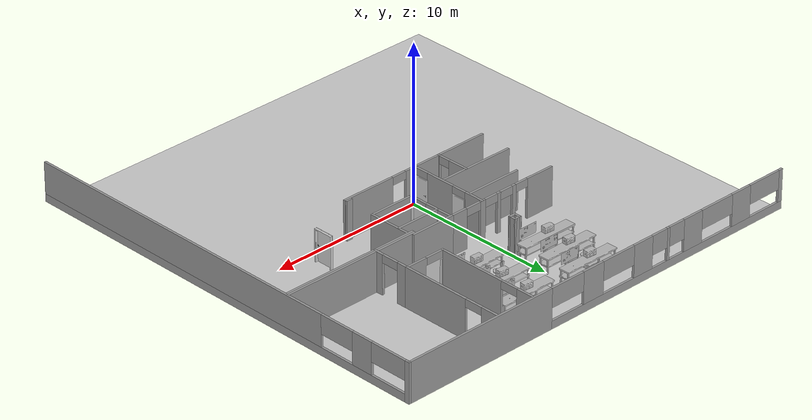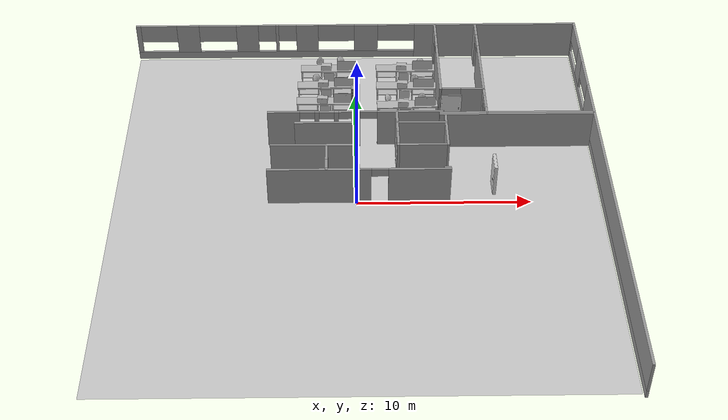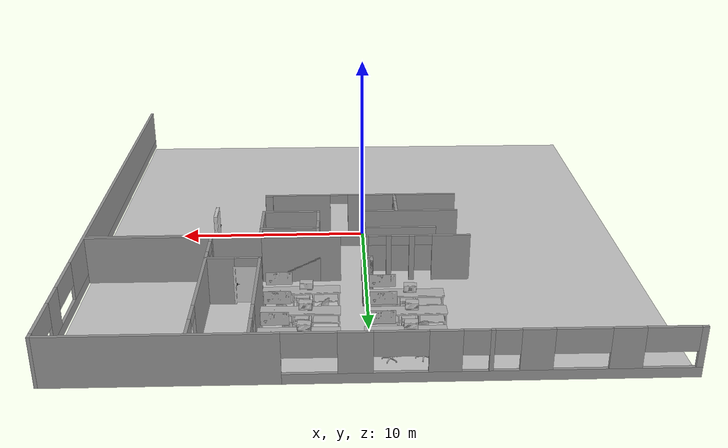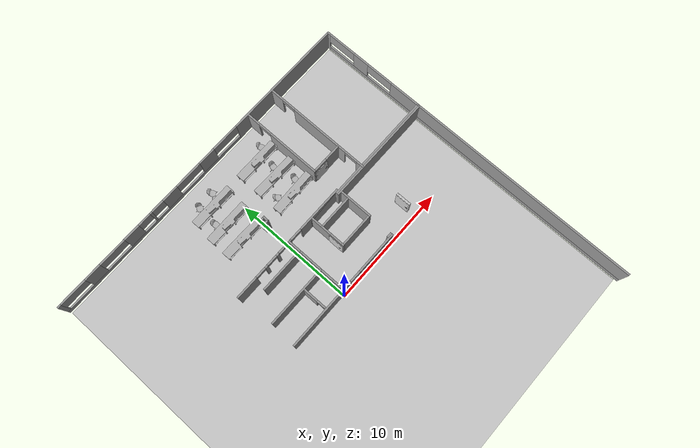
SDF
<sdf version="1.6">
 <world name="default">
  <model name="my_ground_plane">
   <static>1</static>
   <link name="link">
    <collision name="collision">
     <geometry><plane><normal>0 0 1</normal><size>100 100</size></plane></geometry>
     <surface><friction><ode><mu>100</mu><mu2>50</mu2></ode></friction></surface>
    </collision>
    <visual name="visual">
     <cast_shadows>0</cast_shadows>
     <geometry><plane><normal>0 0 1</normal><size>28 28</size></plane></geometry>
     <material>
      <script>
       <uri>model://my_ground_plane/materials/scripts</uri>
       <uri>model://my_ground_plane/materials/textures</uri>
       <name>MyGroundPlane/Image</name>
      </script>
     </material>
    </visual>
   </link>
  </model>
  <model name="basement">
   <link name="Wall_108">
    <pose>2.7255 0.139626 0 0 -0 0</pose>
    <visual name="Wall_108_Visual_0">
     <pose>-2.26972 0 1.25 0 -0 0</pose>
     <geometry><box><size>0.710554 0.15 2.5</size></box></geometry>
     <material>
      <script><uri>file://media/materials/scripts/gazebo.material</uri><name>Gazebo/Grey</name></script>
      <ambient>1 1 1 1</ambient>
     </material>
    </visual>
    <collision name="Wall_108_Collision_0">
     <geometry><box><size>0.710554 0.15 2.5</size></box></geometry>
     <pose>-2.26972 0 1.25 0 -0 0</pose>
    </collision>
    <visual name="Wall_108_Visual_1">
     <pose>0.840079 0 1.25 0 -0 0</pose>
     <geometry><box><size>3.56984 0.15 2.5</size></box></geometry>
     <material>
      <script><uri>file://media/materials/scripts/gazebo.material</uri><name>Gazebo/Grey</name></script>
      <ambient>1 1 1 1</ambient>
     </material>
    </visual>
    <collision name="Wall_108_Collision_1">
     <geometry><box><size>3.56984 0.15 2.5</size></box></geometry>
     <pose>0.840079 0 1.25 0 -0 0</pose>
    </collision>
    <visual name="Wall_108_Visual_2">
     <pose>-1.42964 0 2.25 0 -0 0</pose>
     <geometry><box><size>0.969605 0.15 0.5</size></box></geometry>
     <material>
      <script><uri>file://media/materials/scripts/gazebo.material</uri><name>Gazebo/Grey</name></script>
      <ambient>1 1 1 1</ambient>
     </material>
    </visual>
    <collision name="Wall_108_Collision_2">
     <geometry><box><size>0.969605 0.15 0.5</size></box></geometry>
     <pose>-1.42964 0 2.25 0 -0 0</pose>
    </collision>
   </link>
   <link name="Wall_116">
    <collision name="Wall_116_Collision">
     <geometry><box><size>0.4 0.15 2.5</size></box></geometry>
     <pose>0 0 1.25 0 -0 0</pose>
    </collision>
    <visual name="Wall_116_Visual">
     <pose>0 0 1.25 0 -0 0</pose>
     <geometry><box><size>0.4 0.15 2.5</size></box></geometry>
     <material>
      <script><uri>file://media/materials/scripts/gazebo.material</uri><name>Gazebo/Grey</name></script>
      <ambient>1 1 1 1</ambient>
     </material>
    </visual>
    <pose>5.13257 0.268093 0 0 -0 0</pose>
   </link>
   <link name="Wall_33">
    <pose>-0.0257 5.29795 0 0 -0 0</pose>
    <visual name="Wall_33_Visual_0">
     <pose>-4.2845 0 1.25 0 -0 0</pose>
     <geometry><box><size>1.93101 0.15 2.5</size></box></geometry>
     <material>
      <script><uri>file://media/materials/scripts/gazebo.material</uri><name>Gazebo/Grey</name></script>
      <ambient>1 1 1 1</ambient>
     </material>
    </visual>
    <collision name="Wall_33_Collision_0">
     <geometry><box><size>1.93101 0.15 2.5</size></box></geometry>
     <pose>-4.2845 0 1.25 0 -0 0</pose>
    </collision>
    <visual name="Wall_33_Visual_1">
     <pose>-2.30166 0 1.25 0 -0 0</pose>
     <geometry><box><size>0.26897 0.15 2.5</size></box></geometry>
     <material>
      <script><uri>file://media/materials/scripts/gazebo.material</uri><name>Gazebo/Grey</name></script>
      <ambient>1 1 1 1</ambient>
     </material>
    </visual>
    <collision name="Wall_33_Collision_1">
     <geometry><box><size>0.26897 0.15 2.5</size></box></geometry>
     <pose>-2.30166 0 1.25 0 -0 0</pose>
    </collision>
    <visual name="Wall_33_Visual_2">
     <pose>-1.1397 0 1.25 0 -0 0</pose>
     <geometry><box><size>0.254942 0.15 2.5</size></box></geometry>
     <material>
      <script><uri>file://media/materials/scripts/gazebo.material</uri><name>Gazebo/Grey</name></script>
      <ambient>1 1 1 1</ambient>
     </material>
    </visual>
    <collision name="Wall_33_Collision_2">
     <geometry><box><size>0.254942 0.15 2.5</size></box></geometry>
     <pose>-1.1397 0 1.25 0 -0 0</pose>
    </collision>
    <visual name="Wall_33_Visual_3">
     <pose>0.071064 0 1.25 0 -0 0</pose>
     <geometry><box><size>0.366595 0.15 2.5</size></box></geometry>
     <material>
      <script><uri>file://media/materials/scripts/gazebo.material</uri><name>Gazebo/Grey</name></script>
      <ambient>1 1 1 1</ambient>
     </material>
    </visual>
    <collision name="Wall_33_Collision_3">
     <geometry><box><size>0.366595 0.15 2.5</size></box></geometry>
     <pose>0.071064 0 1.25 0 -0 0</pose>
    </collision>
    <visual name="Wall_33_Visual_4">
     <pose>3.26793 0 1.25 0 -0 0</pose>
     <geometry><box><size>3.96414 0.15 2.5</size></box></geometry>
     <material>
      <script><uri>file://media/materials/scripts/gazebo.material</uri><name>Gazebo/Grey</name></script>
      <ambient>1 1 1 1</ambient>
     </material>
    </visual>
    <collision name="Wall_33_Collision_4">
     <geometry><box><size>3.96414 0.15 2.5</size></box></geometry>
     <pose>3.26793 0 1.25 0 -0 0</pose>
    </collision>
    <visual name="Wall_33_Visual_5">
     <pose>3.78189 0 1.25 0 -0 0</pose>
     <geometry><box><size>2.93622 0.15 2.5</size></box></geometry>
     <material>
      <script><uri>file://media/materials/scripts/gazebo.material</uri><name>Gazebo/Grey</name></script>
      <ambient>1 1 1 1</ambient>
     </material>
    </visual>
    <collision name="Wall_33_Collision_5">
     <geometry><box><size>2.93622 0.15 2.5</size></box></geometry>
     <pose>3.78189 0 1.25 0 -0 0</pose>
    </collision>
    <visual name="Wall_33_Visual_6">
     <pose>-2.87757 0 2.25 0 -0 0</pose>
     <geometry><box><size>0.882847 0.15 0.5</size></box></geometry>
     <material>
      <script><uri>file://media/materials/scripts/gazebo.material</uri><name>Gazebo/Grey</name></script>
      <ambient>1 1 1 1</ambient>
     </material>
    </visual>
    <collision name="Wall_33_Collision_6">
     <geometry><box><size>0.882847 0.15 0.5</size></box></geometry>
     <pose>-2.87757 0 2.25 0 -0 0</pose>
    </collision>
    <visual name="Wall_33_Visual_7">
     <pose>-1.71717 0 2.25 0 -0 0</pose>
     <geometry><box><size>0.9 0.15 0.5</size></box></geometry>
     <material>
      <script><uri>file://media/materials/scripts/gazebo.material</uri><name>Gazebo/Grey</name></script>
      <ambient>1 1 1 1</ambient>
     </material>
    </visual>
    <collision name="Wall_33_Collision_7">
     <geometry><box><size>0.9 0.15 0.5</size></box></geometry>
     <pose>-1.71717 0 2.25 0 -0 0</pose>
    </collision>
    <visual name="Wall_33_Visual_8">
     <pose>-0.562234 0 2.25 0 -0 0</pose>
     <geometry><box><size>0.9 0.15 0.5</size></box></geometry>
     <material>
      <script><uri>file://media/materials/scripts/gazebo.material</uri><name>Gazebo/Grey</name></script>
      <ambient>1 1 1 1</ambient>
     </material>
    </visual>
    <collision name="Wall_33_Collision_8">
     <geometry><box><size>0.9 0.15 0.5</size></box></geometry>
     <pose>-0.562234 0 2.25 0 -0 0</pose>
    </collision>
    <visual name="Wall_33_Visual_9">
     <pose>0.768692 0 2.25 0 -0 0</pose>
     <geometry><box><size>1.02866 0.15 0.5</size></box></geometry>
     <material>
      <script><uri>file://media/materials/scripts/gazebo.material</uri><name>Gazebo/Grey</name></script>
      <ambient>1 1 1 1</ambient>
     </material>
    </visual>
    <collision name="Wall_33_Collision_9">
     <geometry><box><size>1.02866 0.15 0.5</size></box></geometry>
     <pose>0.768692 0 2.25 0 -0 0</pose>
    </collision>
   </link>
   <link name="Wall_35">
    <pose>5.14294 10.7592 0 0 -0 1.5708</pose>
    <visual name="Wall_35_Visual_0">
     <pose>-1.14443 0 1.25 0 -0 0</pose>
     <geometry><box><size>4.46114 0.15 2.5</size></box></geometry>
     <material>
      <script><uri>file://media/materials/scripts/gazebo.material</uri><name>Gazebo/Grey</name></script>
      <ambient>1 1 1 1</ambient>
     </material>
    </visual>
    <collision name="Wall_35_Collision_0">
     <geometry><box><size>4.46114 0.15 2.5</size></box></geometry>
     <pose>-1.14443 0 1.25 0 -0 0</pose>
    </collision>
    <visual name="Wall_35_Visual_1">
     <pose>2.80026 0 1.25 0 -0 0</pose>
     <geometry><box><size>1.14948 0.15 2.5</size></box></geometry>
     <material>
      <script><uri>file://media/materials/scripts/gazebo.material</uri><name>Gazebo/Grey</name></script>
      <ambient>1 1 1 1</ambient>
     </material>
    </visual>
    <collision name="Wall_35_Collision_1">
     <geometry><box><size>1.14948 0.15 2.5</size></box></geometry>
     <pose>2.80026 0 1.25 0 -0 0</pose>
    </collision>
    <visual name="Wall_35_Visual_2">
     <pose>1.65583 0 2.25 0 -0 0</pose>
     <geometry><box><size>1.13938 0.15 0.5</size></box></geometry>
     <material>
      <script><uri>file://media/materials/scripts/gazebo.material</uri><name>Gazebo/Grey</name></script>
      <ambient>1 1 1 1</ambient>
     </material>
    </visual>
    <collision name="Wall_35_Collision_2">
     <geometry><box><size>1.13938 0.15 0.5</size></box></geometry>
     <pose>1.65583 0 2.25 0 -0 0</pose>
    </collision>
   </link>
   <link name="Wall_37">
    <pose>6.43878 7.45698 0 0 0 -0.001748</pose>
    <visual name="Wall_37_Visual_0">
     <pose>-1.29409 0 1.25 0 -0 0</pose>
     <geometry><box><size>0.153496 0.15 2.5</size></box></geometry>
     <material>
      <script><uri>file://media/materials/scripts/gazebo.material</uri><name>Gazebo/Grey</name></script>
      <ambient>1 1 1 1</ambient>
     </material>
    </visual>
    <collision name="Wall_37_Collision_0">
     <geometry><box><size>0.153496 0.15 2.5</size></box></geometry>
     <pose>-1.29409 0 1.25 0 -0 0</pose>
    </collision>
    <visual name="Wall_37_Visual_1">
     <pose>0.650436 0 1.25 0 -0 0</pose>
     <geometry><box><size>1.4408 0.15 2.5</size></box></geometry>
     <material>
      <script><uri>file://media/materials/scripts/gazebo.material</uri><name>Gazebo/Grey</name></script>
      <ambient>1 1 1 1</ambient>
     </material>
    </visual>
    <collision name="Wall_37_Collision_1">
     <geometry><box><size>1.4408 0.15 2.5</size></box></geometry>
     <pose>0.650436 0 1.25 0 -0 0</pose>
    </collision>
    <visual name="Wall_37_Visual_2">
     <pose>-0.643652 0 2.25 0 -0 0</pose>
     <geometry><box><size>1.14738 0.15 0.5</size></box></geometry>
     <material>
      <script><uri>file://media/materials/scripts/gazebo.material</uri><name>Gazebo/Grey</name></script>
      <ambient>1 1 1 1</ambient>
     </material>
    </visual>
    <collision name="Wall_37_Collision_2">
     <geometry><box><size>1.14738 0.15 0.5</size></box></geometry>
     <pose>-0.643652 0 2.25 0 -0 0</pose>
    </collision>
   </link>
   <link name="Wall_38">
    <pose>7.74331 10.7547 0 0 -0 1.5708</pose>
    <visual name="Wall_38_Visual_0">
     <pose>-1.1444 0 1.25 0 -0 0</pose>
     <geometry><box><size>4.4612 0.15 2.5</size></box></geometry>
     <material>
      <script><uri>file://media/materials/scripts/gazebo.material</uri><name>Gazebo/Grey</name></script>
      <ambient>1 1 1 1</ambient>
     </material>
    </visual>
    <collision name="Wall_38_Collision_0">
     <geometry><box><size>4.4612 0.15 2.5</size></box></geometry>
     <pose>-1.1444 0 1.25 0 -0 0</pose>
    </collision>
    <visual name="Wall_38_Visual_1">
     <pose>2.80523 0 1.25 0 -0 0</pose>
     <geometry><box><size>1.13954 0.15 2.5</size></box></geometry>
     <material>
      <script><uri>file://media/materials/scripts/gazebo.material</uri><name>Gazebo/Grey</name></script>
      <ambient>1 1 1 1</ambient>
     </material>
    </visual>
    <collision name="Wall_38_Collision_1">
     <geometry><box><size>1.13954 0.15 2.5</size></box></geometry>
     <pose>2.80523 0 1.25 0 -0 0</pose>
    </collision>
    <visual name="Wall_38_Visual_2">
     <pose>1.66083 0 2.25 0 -0 0</pose>
     <geometry><box><size>1.14927 0.15 0.5</size></box></geometry>
     <material>
      <script><uri>file://media/materials/scripts/gazebo.material</uri><name>Gazebo/Grey</name></script>
      <ambient>1 1 1 1</ambient>
     </material>
    </visual>
    <collision name="Wall_38_Collision_2">
     <geometry><box><size>1.14927 0.15 0.5</size></box></geometry>
     <pose>1.66083 0 2.25 0 -0 0</pose>
    </collision>
   </link>
   <link name="Wall_40">
    <pose>7.74284 6.23253 0 0 -0 1.5708</pose>
    <visual name="Wall_40_Visual_0">
     <pose>-0.91423 0 1.25 0 -0 0</pose>
     <geometry><box><size>0.671541 0.15 2.5</size></box></geometry>
     <material>
      <script><uri>file://media/materials/scripts/gazebo.material</uri><name>Gazebo/Grey</name></script>
      <ambient>1 1 1 1</ambient>
     </material>
    </visual>
    <collision name="Wall_40_Collision_0">
     <geometry><box><size>0.671541 0.15 2.5</size></box></geometry>
     <pose>-0.91423 0 1.25 0 -0 0</pose>
    </collision>
    <visual name="Wall_40_Visual_1">
     <pose>0.897548 0 1.25 0 -0 0</pose>
     <geometry><box><size>0.704904 0.15 2.5</size></box></geometry>
     <material>
      <script><uri>file://media/materials/scripts/gazebo.material</uri><name>Gazebo/Grey</name></script>
      <ambient>1 1 1 1</ambient>
     </material>
    </visual>
    <collision name="Wall_40_Collision_1">
     <geometry><box><size>0.704904 0.15 2.5</size></box></geometry>
     <pose>0.897548 0 1.25 0 -0 0</pose>
    </collision>
    <visual name="Wall_40_Visual_2">
     <pose>1.19765 0 1.25 0 -0 0</pose>
     <geometry><box><size>0.104698 0.15 2.5</size></box></geometry>
     <material>
      <script><uri>file://media/materials/scripts/gazebo.material</uri><name>Gazebo/Grey</name></script>
      <ambient>1 1 1 1</ambient>
     </material>
    </visual>
    <collision name="Wall_40_Collision_2">
     <geometry><box><size>0.104698 0.15 2.5</size></box></geometry>
     <pose>1.19765 0 1.25 0 -0 0</pose>
    </collision>
    <visual name="Wall_40_Visual_3">
     <pose>-0.022457 0 2.25 0 -0 0</pose>
     <geometry><box><size>1.11201 0.15 0.5</size></box></geometry>
     <material>
      <script><uri>file://media/materials/scripts/gazebo.material</uri><name>Gazebo/Grey</name></script>
      <ambient>1 1 1 1</ambient>
     </material>
    </visual>
    <collision name="Wall_40_Collision_3">
     <geometry><box><size>1.11201 0.15 0.5</size></box></geometry>
     <pose>-0.022457 0 2.25 0 -0 0</pose>
    </collision>
   </link>
   <link name="Wall_42">
    <collision name="Wall_42_Collision">
     <geometry><box><size>0.5 0.15 2.5</size></box></geometry>
     <pose>0 0 1.25 0 -0 0</pose>
    </collision>
    <visual name="Wall_42_Visual">
     <pose>0 0 1.25 0 -0 0</pose>
     <geometry><box><size>0.5 0.15 2.5</size></box></geometry>
     <material>
      <script><uri>file://media/materials/scripts/gazebo.material</uri><name>Gazebo/Grey</name></script>
      <ambient>1 1 1 1</ambient>
     </material>
    </visual>
    <pose>-0.191022 7.69282 0 0 0 -1.5708</pose>
   </link>
   <link name="Wall_43">
    <collision name="Wall_43_Collision">
     <geometry><box><size>0.5 0.15 2.5</size></box></geometry>
     <pose>0 0 1.25 0 -0 0</pose>
    </collision>
    <visual name="Wall_43_Visual">
     <pose>0 0 1.25 0 -0 0</pose>
     <geometry><box><size>0.5 0.15 2.5</size></box></geometry>
     <material>
      <script><uri>file://media/materials/scripts/gazebo.material</uri><name>Gazebo/Grey</name></script>
      <ambient>1 1 1 1</ambient>
     </material>
    </visual>
    <pose>-0.016022 7.51782 0 0 -0 0</pose>
   </link>
   <link name="Wall_44">
    <collision name="Wall_44_Collision">
     <geometry><box><size>0.5 0.15 2.5</size></box></geometry>
     <pose>0 0 1.25 0 -0 0</pose>
    </collision>
    <visual name="Wall_44_Visual">
     <pose>0 0 1.25 0 -0 0</pose>
     <geometry><box><size>0.5 0.15 2.5</size></box></geometry>
     <material>
      <script><uri>file://media/materials/scripts/gazebo.material</uri><name>Gazebo/Grey</name></script>
      <ambient>1 1 1 1</ambient>
     </material>
    </visual>
    <pose>0.158978 7.69282 0 0 -0 1.5708</pose>
   </link>
   <link name="Wall_45">
    <collision name="Wall_45_Collision">
     <geometry><box><size>0.5 0.15 2.5</size></box></geometry>
     <pose>0 0 1.25 0 -0 0</pose>
    </collision>
    <visual name="Wall_45_Visual">
     <pose>0 0 1.25 0 -0 0</pose>
     <geometry><box><size>0.5 0.15 2.5</size></box></geometry>
     <material>
      <script><uri>file://media/materials/scripts/gazebo.material</uri><name>Gazebo/Grey</name></script>
      <ambient>1 1 1 1</ambient>
     </material>
    </visual>
    <pose>-0.016022 7.86782 0 0 -0 3.14159</pose>
   </link>
   <link name="Wall_49">
    <collision name="Wall_49_Collision">
     <geometry><box><size>5.10941 0.15 2.5</size></box></geometry>
     <pose>0 0 1.25 0 -0 0</pose>
    </collision>
    <visual name="Wall_49_Visual">
     <pose>0 0 1.25 0 -0 0</pose>
     <geometry><box><size>5.10941 0.15 2.5</size></box></geometry>
     <material>
      <script><uri>file://media/materials/scripts/gazebo.material</uri><name>Gazebo/Grey</name></script>
      <ambient>1 1 1 1</ambient>
     </material>
    </visual>
    <pose>-2.43353 2.27623 0 0 -0 3.13785</pose>
   </link>
   <link name="Wall_5">
    <pose>14.1254 0.001224 0 0 0 -1.5708</pose>
    <visual name="Wall_5_Visual_0">
     <pose>-14.0869 0 1.25 0 -0 0</pose>
     <geometry><box><size>0.326197 0.15 2.5</size></box></geometry>
     <material>
      <script><uri>file://media/materials/scripts/gazebo.material</uri><name>Gazebo/Grey</name></script>
      <ambient>1 1 1 1</ambient>
     </material>
    </visual>
    <collision name="Wall_5_Collision_0">
     <geometry><box><size>0.326197 0.15 2.5</size></box></geometry>
     <pose>-14.0869 0 1.25 0 -0 0</pose>
    </collision>
    <visual name="Wall_5_Visual_1">
     <pose>0.163098 0 0.25 0 -0 0</pose>
     <geometry><box><size>28.1738 0.15 0.5</size></box></geometry>
     <material>
      <script><uri>file://media/materials/scripts/gazebo.material</uri><name>Gazebo/Grey</name></script>
      <ambient>1 1 1 1</ambient>
     </material>
    </visual>
    <collision name="Wall_5_Collision_1">
     <geometry><box><size>28.1738 0.15 0.5</size></box></geometry>
     <pose>0.163098 0 0.25 0 -0 0</pose>
    </collision>
    <visual name="Wall_5_Visual_2">
     <pose>-10.7815 0 1.5 0 -0 0</pose>
     <geometry><box><size>1.40279 0.15 2</size></box></geometry>
     <material>
      <script><uri>file://media/materials/scripts/gazebo.material</uri><name>Gazebo/Grey</name></script>
      <ambient>1 1 1 1</ambient>
     </material>
    </visual>
    <collision name="Wall_5_Collision_2">
     <geometry><box><size>1.40279 0.15 2</size></box></geometry>
     <pose>-10.7815 0 1.5 0 -0 0</pose>
    </collision>
    <visual name="Wall_5_Visual_3">
     <pose>3.25452 0 1.5 0 -0 0</pose>
     <geometry><box><size>21.991 0.15 2</size></box></geometry>
     <material>
      <script><uri>file://media/materials/scripts/gazebo.material</uri><name>Gazebo/Grey</name></script>
      <ambient>1 1 1 1</ambient>
     </material>
    </visual>
    <collision name="Wall_5_Collision_3">
     <geometry><box><size>21.991 0.15 2</size></box></geometry>
     <pose>3.25452 0 1.5 0 -0 0</pose>
    </collision>
    <visual name="Wall_5_Visual_4">
     <pose>-12.7033 0 1.9 0 -0 0</pose>
     <geometry><box><size>2.44093 0.15 1.2</size></box></geometry>
     <material>
      <script><uri>file://media/materials/scripts/gazebo.material</uri><name>Gazebo/Grey</name></script>
      <ambient>1 1 1 1</ambient>
     </material>
    </visual>
    <collision name="Wall_5_Collision_4">
     <geometry><box><size>2.44093 0.15 1.2</size></box></geometry>
     <pose>-12.7033 0 1.9 0 -0 0</pose>
    </collision>
    <visual name="Wall_5_Visual_5">
     <pose>-8.91052 0 1.9 0 -0 0</pose>
     <geometry><box><size>2.33913 0.15 1.2</size></box></geometry>
     <material>
      <script><uri>file://media/materials/scripts/gazebo.material</uri><name>Gazebo/Grey</name></script>
      <ambient>1 1 1 1</ambient>
     </material>
    </visual>
    <collision name="Wall_5_Collision_5">
     <geometry><box><size>2.33913 0.15 1.2</size></box></geometry>
     <pose>-8.91052 0 1.9 0 -0 0</pose>
    </collision>
   </link>
   <link name="Wall_51">
    <pose>0.057254 2.74787 0 0 0 -1.5708</pose>
    <visual name="Wall_51_Visual_0">
     <pose>-1.95726 0 1.25 0 -0 0</pose>
     <geometry><box><size>1.33549 0.15 2.5</size></box></geometry>
     <material>
      <script><uri>file://media/materials/scripts/gazebo.material</uri><name>Gazebo/Grey</name></script>
      <ambient>1 1 1 1</ambient>
     </material>
    </visual>
    <collision name="Wall_51_Collision_0">
     <geometry><box><size>1.33549 0.15 2.5</size></box></geometry>
     <pose>-1.95726 0 1.25 0 -0 0</pose>
    </collision>
    <visual name="Wall_51_Visual_1">
     <pose>0.62213 0 1.25 0 -0 0</pose>
     <geometry><box><size>1.94767 0.15 2.5</size></box></geometry>
     <material>
      <script><uri>file://media/materials/scripts/gazebo.material</uri><name>Gazebo/Grey</name></script>
      <ambient>1 1 1 1</ambient>
     </material>
    </visual>
    <collision name="Wall_51_Collision_1">
     <geometry><box><size>1.94767 0.15 2.5</size></box></geometry>
     <pose>0.62213 0 1.25 0 -0 0</pose>
    </collision>
    <visual name="Wall_51_Visual_2">
     <pose>2.56048 0 1.25 0 -0 0</pose>
     <geometry><box><size>0.129033 0.15 2.5</size></box></geometry>
     <material>
      <script><uri>file://media/materials/scripts/gazebo.material</uri><name>Gazebo/Grey</name></script>
      <ambient>1 1 1 1</ambient>
     </material>
    </visual>
    <collision name="Wall_51_Collision_2">
     <geometry><box><size>0.129033 0.15 2.5</size></box></geometry>
     <pose>2.56048 0 1.25 0 -0 0</pose>
    </collision>
    <visual name="Wall_51_Visual_3">
     <pose>-0.82061 0 2.25 0 -0 0</pose>
     <geometry><box><size>0.937807 0.15 0.5</size></box></geometry>
     <material>
      <script><uri>file://media/materials/scripts/gazebo.material</uri><name>Gazebo/Grey</name></script>
      <ambient>1 1 1 1</ambient>
     </material>
    </visual>
    <collision name="Wall_51_Collision_3">
     <geometry><box><size>0.937807 0.15 0.5</size></box></geometry>
     <pose>-0.82061 0 2.25 0 -0 0</pose>
    </collision>
    <visual name="Wall_51_Visual_4">
     <pose>2.04597 0 2.25 0 -0 0</pose>
     <geometry><box><size>0.9 0.15 0.5</size></box></geometry>
     <material>
      <script><uri>file://media/materials/scripts/gazebo.material</uri><name>Gazebo/Grey</name></script>
      <ambient>1 1 1 1</ambient>
     </material>
    </visual>
    <collision name="Wall_51_Collision_4">
     <geometry><box><size>0.9 0.15 0.5</size></box></geometry>
     <pose>2.04597 0 2.25 0 -0 0</pose>
    </collision>
   </link>
   <link name="Wall_53">
    <collision name="Wall_53_Collision">
     <geometry><box><size>3.75 0.15 2.5</size></box></geometry>
     <pose>0 0 1.25 0 -0 0</pose>
    </collision>
    <visual name="Wall_53_Visual">
     <pose>0 0 1.25 0 -0 0</pose>
     <geometry><box><size>3.75 0.15 2.5</size></box></geometry>
     <material>
      <script><uri>file://media/materials/scripts/gazebo.material</uri><name>Gazebo/Grey</name></script>
      <ambient>1 1 1 1</ambient>
     </material>
    </visual>
    <pose>-1.76423 4.29808 0 0 -0 0</pose>
   </link>
   <link name="Wall_63">
    <collision name="Wall_63_Collision">
     <geometry><box><size>5.25 0.15 2.5</size></box></geometry>
     <pose>0 0 1.25 0 -0 0</pose>
    </collision>
    <visual name="Wall_63_Visual">
     <pose>0 0 1.25 0 -0 0</pose>
     <geometry><box><size>5.25 0.15 2.5</size></box></geometry>
     <material>
      <script><uri>file://media/materials/scripts/gazebo.material</uri><name>Gazebo/Grey</name></script>
      <ambient>1 1 1 1</ambient>
     </material>
    </visual>
    <pose>-2.49367 0.144889 0 0 -0 0</pose>
   </link>
   <link name="Wall_65">
    <pose>-1.74088 1.21415 0 0 -0 1.5708</pose>
    <visual name="Wall_65_Visual_0">
     <pose>-1.03933 0 1.25 0 -0 0</pose>
     <geometry><box><size>0.171333 0.15 2.5</size></box></geometry>
     <material>
      <script><uri>file://media/materials/scripts/gazebo.material</uri><name>Gazebo/Grey</name></script>
      <ambient>1 1 1 1</ambient>
     </material>
    </visual>
    <collision name="Wall_65_Collision_0">
     <geometry><box><size>0.171333 0.15 2.5</size></box></geometry>
     <pose>-1.03933 0 1.25 0 -0 0</pose>
    </collision>
    <visual name="Wall_65_Visual_1">
     <pose>0.461338 0 1.25 0 -0 0</pose>
     <geometry><box><size>1.32732 0.15 2.5</size></box></geometry>
     <material>
      <script><uri>file://media/materials/scripts/gazebo.material</uri><name>Gazebo/Grey</name></script>
      <ambient>1 1 1 1</ambient>
     </material>
    </visual>
    <collision name="Wall_65_Collision_1">
     <geometry><box><size>1.32732 0.15 2.5</size></box></geometry>
     <pose>0.461338 0 1.25 0 -0 0</pose>
    </collision>
    <visual name="Wall_65_Visual_2">
     <pose>-0.577995 0 2.25 0 -0 0</pose>
     <geometry><box><size>0.751344 0.15 0.5</size></box></geometry>
     <material>
      <script><uri>file://media/materials/scripts/gazebo.material</uri><name>Gazebo/Grey</name></script>
      <ambient>1 1 1 1</ambient>
     </material>
    </visual>
    <collision name="Wall_65_Collision_2">
     <geometry><box><size>0.751344 0.15 0.5</size></box></geometry>
     <pose>-0.577995 0 2.25 0 -0 0</pose>
    </collision>
   </link>
   <link name="Wall_7">
    <pose>0.075421 14.1762 0 0 -0 3.14159</pose>
    <visual name="Wall_7_Visual_0">
     <pose>-8.94916 0 1.25 0 -0 0</pose>
     <geometry><box><size>10.3517 0.15 2.5</size></box></geometry>
     <material>
      <script><uri>file://media/materials/scripts/gazebo.material</uri><name>Gazebo/Grey</name></script>
      <ambient>1 1 1 1</ambient>
     </material>
    </visual>
    <collision name="Wall_7_Collision_0">
     <geometry><box><size>10.3517 0.15 2.5</size></box></geometry>
     <pose>-8.94916 0 1.25 0 -0 0</pose>
    </collision>
    <visual name="Wall_7_Visual_1">
     <pose>5.17584 0 0.25 0 -0 0</pose>
     <geometry><box><size>17.8983 0.15 0.5</size></box></geometry>
     <material>
      <script><uri>file://media/materials/scripts/gazebo.material</uri><name>Gazebo/Grey</name></script>
      <ambient>1 1 1 1</ambient>
     </material>
    </visual>
    <collision name="Wall_7_Collision_1">
     <geometry><box><size>17.8983 0.15 0.5</size></box></geometry>
     <pose>5.17584 0 0.25 0 -0 0</pose>
    </collision>
    <visual name="Wall_7_Visual_2">
     <pose>-0.655938 0 1.5 0 -0 0</pose>
     <geometry><box><size>1.50435 0.15 2</size></box></geometry>
     <material>
      <script><uri>file://media/materials/scripts/gazebo.material</uri><name>Gazebo/Grey</name></script>
      <ambient>1 1 1 1</ambient>
     </material>
    </visual>
    <collision name="Wall_7_Collision_2">
     <geometry><box><size>1.50435 0.15 2</size></box></geometry>
     <pose>-0.655938 0 1.5 0 -0 0</pose>
    </collision>
    <visual name="Wall_7_Visual_3">
     <pose>3.13367 0 1.5 0 -0 0</pose>
     <geometry><box><size>1.414 0.15 2</size></box></geometry>
     <material>
      <script><uri>file://media/materials/scripts/gazebo.material</uri><name>Gazebo/Grey</name></script>
      <ambient>1 1 1 1</ambient>
     </material>
    </visual>
    <collision name="Wall_7_Collision_3">
     <geometry><box><size>1.414 0.15 2</size></box></geometry>
     <pose>3.13367 0 1.5 0 -0 0</pose>
    </collision>
    <visual name="Wall_7_Visual_4">
     <pose>5.07313 0 1.5 0 -0 0</pose>
     <geometry><box><size>0.188237 0.15 2</size></box></geometry>
     <material>
      <script><uri>file://media/materials/scripts/gazebo.material</uri><name>Gazebo/Grey</name></script>
      <ambient>1 1 1 1</ambient>
     </material>
    </visual>
    <collision name="Wall_7_Collision_4">
     <geometry><box><size>0.188237 0.15 2</size></box></geometry>
     <pose>5.07313 0 1.5 0 -0 0</pose>
    </collision>
    <visual name="Wall_7_Visual_5">
     <pose>6.99754 0 1.5 0 -0 0</pose>
     <geometry><box><size>1.41729 0.15 2</size></box></geometry>
     <material>
      <script><uri>file://media/materials/scripts/gazebo.material</uri><name>Gazebo/Grey</name></script>
      <ambient>1 1 1 1</ambient>
     </material>
    </visual>
    <collision name="Wall_7_Collision_5">
     <geometry><box><size>1.41729 0.15 2</size></box></geometry>
     <pose>6.99754 0 1.5 0 -0 0</pose>
    </collision>
    <visual name="Wall_7_Visual_6">
     <pose>10.8099 0 1.5 0 -0 0</pose>
     <geometry><box><size>1.43338 0.15 2</size></box></geometry>
     <material>
      <script><uri>file://media/materials/scripts/gazebo.material</uri><name>Gazebo/Grey</name></script>
      <ambient>1 1 1 1</ambient>
     </material>
    </visual>
    <collision name="Wall_7_Collision_6">
     <geometry><box><size>1.43338 0.15 2</size></box></geometry>
     <pose>10.8099 0 1.5 0 -0 0</pose>
    </collision>
    <visual name="Wall_7_Visual_7">
     <pose>13.9751 0 1.5 0 -0 0</pose>
     <geometry><box><size>0.299735 0.15 2</size></box></geometry>
     <material>
      <script><uri>file://media/materials/scripts/gazebo.material</uri><name>Gazebo/Grey</name></script>
      <ambient>1 1 1 1</ambient>
     </material>
    </visual>
    <collision name="Wall_7_Collision_7">
     <geometry><box><size>0.299735 0.15 2</size></box></geometry>
     <pose>13.9751 0 1.5 0 -0 0</pose>
    </collision>
    <visual name="Wall_7_Visual_8">
     <pose>-2.59072 0 1.9 0 -0 0</pose>
     <geometry><box><size>2.36522 0.15 1.2</size></box></geometry>
     <material>
      <script><uri>file://media/materials/scripts/gazebo.material</uri><name>Gazebo/Grey</name></script>
      <ambient>1 1 1 1</ambient>
     </material>
    </visual>
    <collision name="Wall_7_Collision_8">
     <geometry><box><size>2.36522 0.15 1.2</size></box></geometry>
     <pose>-2.59072 0 1.9 0 -0 0</pose>
    </collision>
    <visual name="Wall_7_Visual_9">
     <pose>1.26145 0 1.9 0 -0 0</pose>
     <geometry><box><size>2.33044 0.15 1.2</size></box></geometry>
     <material>
      <script><uri>file://media/materials/scripts/gazebo.material</uri><name>Gazebo/Grey</name></script>
      <ambient>1 1 1 1</ambient>
     </material>
    </visual>
    <collision name="Wall_7_Collision_9">
     <geometry><box><size>2.33044 0.15 1.2</size></box></geometry>
     <pose>1.26145 0 1.9 0 -0 0</pose>
    </collision>
    <visual name="Wall_7_Visual_10">
     <pose>4.40984 0 1.9 0 -0 0</pose>
     <geometry><box><size>1.13834 0.15 1.2</size></box></geometry>
     <material>
      <script><uri>file://media/materials/scripts/gazebo.material</uri><name>Gazebo/Grey</name></script>
      <ambient>1 1 1 1</ambient>
     </material>
    </visual>
    <collision name="Wall_7_Collision_10">
     <geometry><box><size>1.13834 0.15 1.2</size></box></geometry>
     <pose>4.40984 0 1.9 0 -0 0</pose>
    </collision>
    <visual name="Wall_7_Visual_11">
     <pose>5.72807 0 1.9 0 -0 0</pose>
     <geometry><box><size>1.12165 0.15 1.2</size></box></geometry>
     <material>
      <script><uri>file://media/materials/scripts/gazebo.material</uri><name>Gazebo/Grey</name></script>
      <ambient>1 1 1 1</ambient>
     </material>
    </visual>
    <collision name="Wall_7_Collision_11">
     <geometry><box><size>1.12165 0.15 1.2</size></box></geometry>
     <pose>5.72807 0 1.9 0 -0 0</pose>
    </collision>
    <visual name="Wall_7_Visual_12">
     <pose>8.89969 0 1.9 0 -0 0</pose>
     <geometry><box><size>2.387 0.15 1.2</size></box></geometry>
     <material>
      <script><uri>file://media/materials/scripts/gazebo.material</uri><name>Gazebo/Grey</name></script>
      <ambient>1 1 1 1</ambient>
     </material>
    </visual>
    <collision name="Wall_7_Collision_12">
     <geometry><box><size>2.387 0.15 1.2</size></box></geometry>
     <pose>8.89969 0 1.9 0 -0 0</pose>
    </collision>
    <visual name="Wall_7_Visual_13">
     <pose>12.6759 0 1.9 0 -0 0</pose>
     <geometry><box><size>2.29869 0.15 1.2</size></box></geometry>
     <material>
      <script><uri>file://media/materials/scripts/gazebo.material</uri><name>Gazebo/Grey</name></script>
      <ambient>1 1 1 1</ambient>
     </material>
    </visual>
    <collision name="Wall_7_Collision_13">
     <geometry><box><size>2.29869 0.15 1.2</size></box></geometry>
     <pose>12.6759 0 1.9 0 -0 0</pose>
    </collision>
   </link>
   <link name="Wall_72">
    <collision name="Wall_72_Collision">
     <geometry><box><size>9.25 0.15 2.5</size></box></geometry>
     <pose>0 0 1.25 0 -0 0</pose>
    </collision>
    <visual name="Wall_72_Visual">
     <pose>0 0 1.25 0 -0 0</pose>
     <geometry><box><size>9.25 0.15 2.5</size></box></geometry>
     <material>
      <script><uri>file://media/materials/scripts/gazebo.material</uri><name>Gazebo/Grey</name></script>
      <ambient>1 1 1 1</ambient>
     </material>
    </visual>
    <pose>9.56173 5.1543 0 0 -0 0</pose>
   </link>
   <link name="Wall_87">
    <collision name="Wall_87_Collision">
     <geometry><box><size>2.75 0.15 2.5</size></box></geometry>
     <pose>0 0 1.25 0 -0 0</pose>
    </collision>
    <visual name="Wall_87_Visual">
     <pose>0 0 1.25 0 -0 0</pose>
     <geometry><box><size>2.75 0.15 2.5</size></box></geometry>
     <material>
      <script><uri>file://media/materials/scripts/gazebo.material</uri><name>Gazebo/Grey</name></script>
      <ambient>1 1 1 1</ambient>
     </material>
    </visual>
    <pose>3.85972 2.27204 0 0 -0 3.14159</pose>
   </link>
   <link name="Wall_89">
    <collision name="Wall_89_Collision">
     <geometry><box><size>2.75 0.15 2.5</size></box></geometry>
     <pose>0 0 1.25 0 -0 0</pose>
    </collision>
    <visual name="Wall_89_Visual">
     <pose>0 0 1.25 0 -0 0</pose>
     <geometry><box><size>2.75 0.15 2.5</size></box></geometry>
     <material>
      <script><uri>file://media/materials/scripts/gazebo.material</uri><name>Gazebo/Grey</name></script>
      <ambient>1 1 1 1</ambient>
     </material>
    </visual>
    <pose>5.29065 3.57332 0 0 0 -1.5708</pose>
   </link>
   <link name="Wall_92">
    <collision name="Wall_92_Collision">
     <geometry><box><size>9.25 0.15 2.5</size></box></geometry>
     <pose>0 0 1.25 0 -0 0</pose>
    </collision>
    <visual name="Wall_92_Visual">
     <pose>0 0 1.25 0 -0 0</pose>
     <geometry><box><size>9.25 0.15 2.5</size></box></geometry>
     <material>
      <script><uri>file://media/materials/scripts/gazebo.material</uri><name>Gazebo/Grey</name></script>
      <ambient>1 1 1 1</ambient>
     </material>
    </visual>
    <pose>9.55987 5.01359 0 0 -0 0</pose>
   </link>
   <link name="Wall_94">
    <pose>2.41363 3.74686 0 0 -0 1.5708</pose>
    <visual name="Wall_94_Visual_0">
     <pose>-1.44282 0 1.25 0 -0 0</pose>
     <geometry><box><size>0.214361 0.15 2.5</size></box></geometry>
     <material>
      <script><uri>file://media/materials/scripts/gazebo.material</uri><name>Gazebo/Grey</name></script>
      <ambient>1 1 1 1</ambient>
     </material>
    </visual>
    <collision name="Wall_94_Collision_0">
     <geometry><box><size>0.214361 0.15 2.5</size></box></geometry>
     <pose>-1.44282 0 1.25 0 -0 0</pose>
    </collision>
    <visual name="Wall_94_Visual_1">
     <pose>0.624467 0 1.25 0 -0 0</pose>
     <geometry><box><size>1.85107 0.15 2.5</size></box></geometry>
     <material>
      <script><uri>file://media/materials/scripts/gazebo.material</uri><name>Gazebo/Grey</name></script>
      <ambient>1 1 1 1</ambient>
     </material>
    </visual>
    <collision name="Wall_94_Collision_1">
     <geometry><box><size>1.85107 0.15 2.5</size></box></geometry>
     <pose>0.624467 0 1.25 0 -0 0</pose>
    </collision>
    <visual name="Wall_94_Visual_2">
     <pose>-0.818353 0 2.25 0 -0 0</pose>
     <geometry><box><size>1.03457 0.15 0.5</size></box></geometry>
     <material>
      <script><uri>file://media/materials/scripts/gazebo.material</uri><name>Gazebo/Grey</name></script>
      <ambient>1 1 1 1</ambient>
     </material>
    </visual>
    <collision name="Wall_94_Collision_2">
     <geometry><box><size>1.03457 0.15 0.5</size></box></geometry>
     <pose>-0.818353 0 2.25 0 -0 0</pose>
    </collision>
   </link>
   <link name="Wall_96">
    <collision name="Wall_96_Collision">
     <geometry><box><size>3 0.15 2.5</size></box></geometry>
     <pose>0 0 1.25 0 -0 0</pose>
    </collision>
    <visual name="Wall_96_Visual">
     <pose>0 0 1.25 0 -0 0</pose>
     <geometry><box><size>3 0.15 2.5</size></box></geometry>
     <material>
      <script><uri>file://media/materials/scripts/gazebo.material</uri><name>Gazebo/Grey</name></script>
      <ambient>1 1 1 1</ambient>
     </material>
    </visual>
    <pose>3.85593 4.2792 0 0 -0 0</pose>
   </link>
   <static>1</static>
  </model>
  <model name="doorxl_7">
   <link name="link">
    <visual name="visual">
     <geometry><mesh><uri>model://doorxl/meshes/doorxl.dae</uri><scale>1 1 1</scale></mesh></geometry>
    </visual>
    <collision name="collision">
     <geometry><mesh><uri>model://doorxl/meshes/doorxl.dae</uri><scale>1 1 1</scale></mesh></geometry>
    </collision>
   </link>
   <static>1</static>
   <pose>5.77645 7.45841 0 0 -0 0</pose>
  </model>
  <model name="door_6">
   <link name="link">
    <visual name="visual">
     <geometry><mesh><uri>model://door/meshes/door.dae</uri><scale>1 1 1</scale></mesh></geometry>
    </visual>
    <collision name="collision">
     <geometry><mesh><uri>model://door/meshes/door.dae</uri><scale>1 1 1</scale></mesh></geometry>
    </collision>
   </link>
   <static>1</static>
   <pose>0.051304 0.722808 0 0 -0 1.5707</pose>
  </model>
  <model name="door_7">
   <link name="link">
    <visual name="visual">
     <geometry><mesh><uri>model://door/meshes/door.dae</uri><scale>1 1 1</scale></mesh></geometry>
    </visual>
    <collision name="collision">
     <geometry><mesh><uri>model://door/meshes/door.dae</uri><scale>1 1 1</scale></mesh></geometry>
    </collision>
   </link>
   <static>1</static>
   <pose>0.053374 3.58628 0 0 -0 1.5707</pose>
  </model>
  <model name="doorxl_6">
   <link name="link">
    <visual name="visual">
     <geometry><mesh><uri>model://doorxl/meshes/doorxl.dae</uri><scale>1 1 1</scale></mesh></geometry>
    </visual>
    <collision name="collision">
     <geometry><mesh><uri>model://doorxl/meshes/doorxl.dae</uri><scale>1 1 1</scale></mesh></geometry>
    </collision>
   </link>
   <static>1</static>
   <pose>2.42708 2.99048 0 0 0 -1.5707</pose>
  </model>
  <model name="doorxl_8">
   <link name="link">
    <visual name="visual">
     <geometry><mesh><uri>model://doorxl/meshes/doorxl.dae</uri><scale>1 1 1</scale></mesh></geometry>
    </visual>
    <collision name="collision">
     <geometry><mesh><uri>model://doorxl/meshes/doorxl.dae</uri><scale>1 1 1</scale></mesh></geometry>
    </collision>
   </link>
   <static>1</static>
   <pose>7.93973 1.30849 0 0 0 -1.5707</pose>
  </model>
  <model name="workbench">
   <link name="link">
    <visual name="visual">
     <geometry><mesh><uri>model://workbench/meshes/workbench.dae</uri><scale>1 1 1</scale></mesh></geometry>
    </visual>
    <collision name="collision">
     <geometry><mesh><uri>model://workbench/meshes/workbench.dae</uri><scale>1 1 1</scale></mesh></geometry>
    </collision>
   </link>
   <static>1</static>
   <pose>3.29047 7.57047 0 0 0 -3.11175</pose>
  </model>
  <model name="workbench_0">
   <link name="link">
    <visual name="visual">
     <geometry><mesh><uri>model://workbench/meshes/workbench.dae</uri><scale>1 1 1</scale></mesh></geometry>
    </visual>
    <collision name="collision">
     <geometry><mesh><uri>model://workbench/meshes/workbench.dae</uri><scale>1 1 1</scale></mesh></geometry>
    </collision>
   </link>
   <static>1</static>
   <pose>-1.68393 7.96889 0 0 -0 3.13309</pose>
  </model>
  <model name="workbench_1">
   <link name="link">
    <visual name="visual">
     <geometry><mesh><uri>model://workbench/meshes/workbench.dae</uri><scale>1 1 1</scale></mesh></geometry>
    </visual>
    <collision name="collision">
     <geometry><mesh><uri>model://workbench/meshes/workbench.dae</uri><scale>1 1 1</scale></mesh></geometry>
    </collision>
   </link>
   <static>1</static>
   <pose>3.27268 9.44885 0 0 -0 3.1248</pose>
  </model>
  <model name="workbench_2">
   <link name="link">
    <visual name="visual">
     <geometry><mesh><uri>model://workbench/meshes/workbench.dae</uri><scale>1 1 1</scale></mesh></geometry>
    </visual>
    <collision name="collision">
     <geometry><mesh><uri>model://workbench/meshes/workbench.dae</uri><scale>1 1 1</scale></mesh></geometry>
    </collision>
   </link>
   <static>1</static>
   <pose>3.29274 11.2816 0 0 0 -3.14143</pose>
  </model>
  <model name="workbench_3">
   <link name="link">
    <visual name="visual">
     <geometry><mesh><uri>model://workbench/meshes/workbench.dae</uri><scale>1 1 1</scale></mesh></geometry>
    </visual>
    <collision name="collision">
     <geometry><mesh><uri>model://workbench/meshes/workbench.dae</uri><scale>1 1 1</scale></mesh></geometry>
    </collision>
   </link>
   <static>1</static>
   <pose>-1.64681 9.5847 0 0 0 -3.13123</pose>
  </model>
  <model name="workbench_4">
   <link name="link">
    <visual name="visual">
     <geometry><mesh><uri>model://workbench/meshes/workbench.dae</uri><scale>1 1 1</scale></mesh></geometry>
    </visual>
    <collision name="collision">
     <geometry><mesh><uri>model://workbench/meshes/workbench.dae</uri><scale>1 1 1</scale></mesh></geometry>
    </collision>
   </link>
   <static>1</static>
   <pose>-1.47599 11.2866 0 0 0 -3.14</pose>
  </model>
  <model name="chair">
   <link name="link">
    <visual name="visual">
     <geometry><mesh><uri>model://chair/meshes/chair.dae</uri><scale>1 1 1</scale></mesh></geometry>
    </visual>
    <collision name="collision">
     <geometry><mesh><uri>model://chair/meshes/chair.dae</uri><scale>1 1 1</scale></mesh></geometry>
    </collision>
   </link>
   <static>1</static>
   <pose>4.26493 12.2855 0 0 -0 0.386826</pose>
  </model>
  <model name="chair_0">
   <link name="link">
    <visual name="visual">
     <geometry><mesh><uri>model://chair/meshes/chair.dae</uri><scale>1 1 1</scale></mesh></geometry>
    </visual>
    <collision name="collision">
     <geometry><mesh><uri>model://chair/meshes/chair.dae</uri><scale>1 1 1</scale></mesh></geometry>
    </collision>
   </link>
   <static>1</static>
   <pose>3.71733 10.5089 0 0 0 -0.154871</pose>
  </model>
  <model name="chair_1">
   <link name="link">
    <visual name="visual">
     <geometry><mesh><uri>model://chair/meshes/chair.dae</uri><scale>1 1 1</scale></mesh></geometry>
    </visual>
    <collision name="collision">
     <geometry><mesh><uri>model://chair/meshes/chair.dae</uri><scale>1 1 1</scale></mesh></geometry>
    </collision>
   </link>
   <static>1</static>
   <pose>4.09524 8.61616 0 0 0 -0.18822</pose>
  </model>
  <model name="chair_2">
   <link name="link">
    <visual name="visual">
     <geometry><mesh><uri>model://chair/meshes/chair.dae</uri><scale>1 1 1</scale></mesh></geometry>
    </visual>
    <collision name="collision">
     <geometry><mesh><uri>model://chair/meshes/chair.dae</uri><scale>1 1 1</scale></mesh></geometry>
    </collision>
   </link>
   <static>1</static>
   <pose>2.17041 8.6072 0 0 -0 0.846817</pose>
  </model>
  <model name="chair_4">
   <link name="link">
    <visual name="visual">
     <geometry><mesh><uri>model://chair/meshes/chair.dae</uri><scale>1 1 1</scale></mesh></geometry>
    </visual>
    <collision name="collision">
     <geometry><mesh><uri>model://chair/meshes/chair.dae</uri><scale>1 1 1</scale></mesh></geometry>
    </collision>
   </link>
   <static>1</static>
   <pose>-2.40809 10.6485 0 0 -0 0.214645</pose>
  </model>
  <model name="chair_5">
   <link name="link">
    <visual name="visual">
     <geometry><mesh><uri>model://chair/meshes/chair.dae</uri><scale>1 1 1</scale></mesh></geometry>
    </visual>
    <collision name="collision">
     <geometry><mesh><uri>model://chair/meshes/chair.dae</uri><scale>1 1 1</scale></mesh></geometry>
    </collision>
   </link>
   <static>1</static>
   <pose>-0.837673 12.5222 0 0 -0 0.495881</pose>
  </model>
  <model name="chair_6">
   <link name="link">
    <visual name="visual">
     <geometry><mesh><uri>model://chair/meshes/chair.dae</uri><scale>1 1 1</scale></mesh></geometry>
    </visual>
    <collision name="collision">
     <geometry><mesh><uri>model://chair/meshes/chair.dae</uri><scale>1 1 1</scale></mesh></geometry>
    </collision>
   </link>
   <static>1</static>
   <pose>-2.31603 12.4029 0 0 0 -0.475706</pose>
  </model>
 </world>
</sdf>
